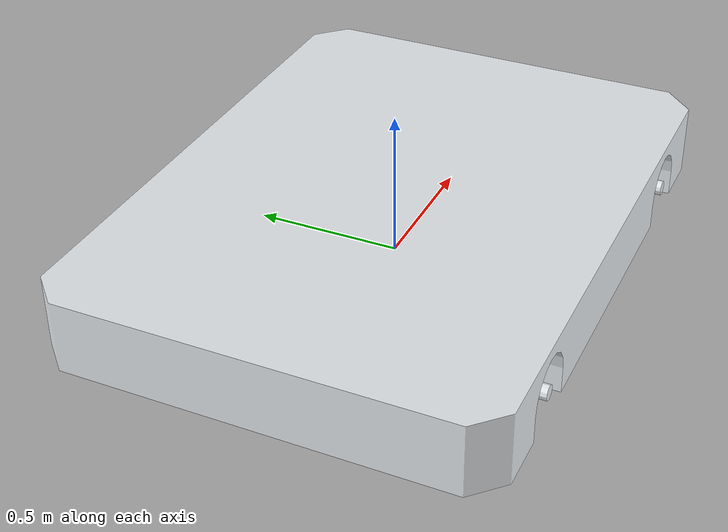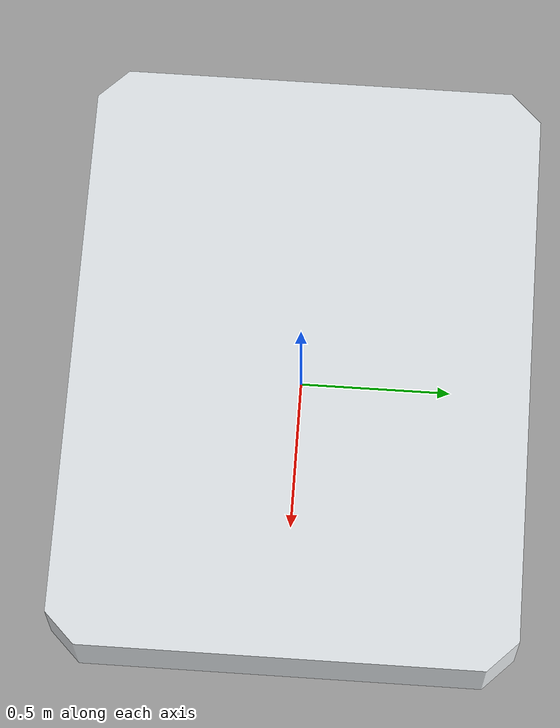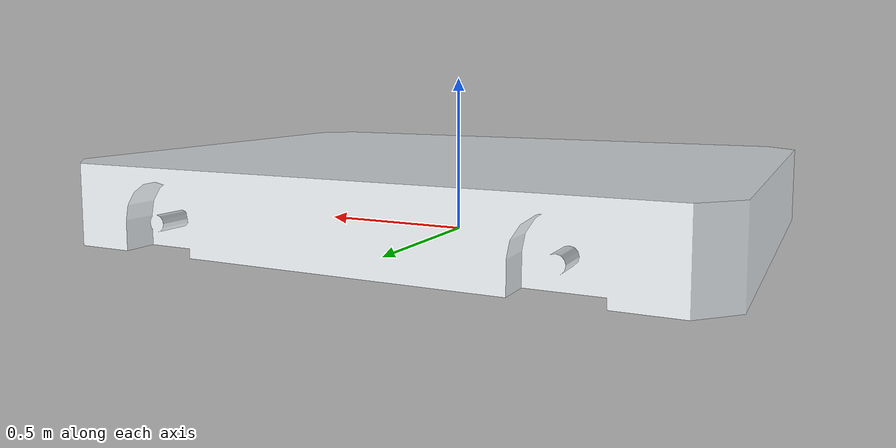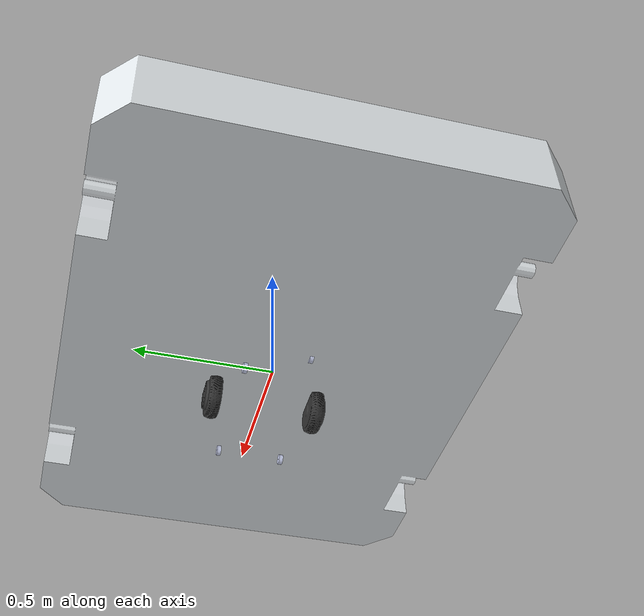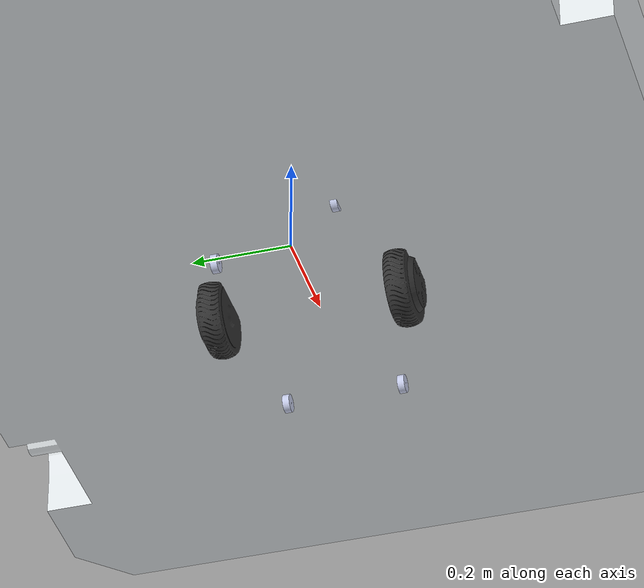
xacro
<?xml version="1.0"?>
<robot xmlns:xacro="http://www.ros.org/wiki/xacro" name="catkinws3">

    <xacro:include filename="$(find agv_description)/urdf/agv.gazebo.xml"/>

    <!-- base_footprint -->
    <link name="base_footprint"/>

    <!-- base_link -->
    <link name="base_link">
        <inertial>
            <origin xyz="0.138621950270377 2.91906096794303E-07 0.0179577331652797" rpy="0 0 0" />
            <mass value="3.97166544078829" />
            <inertia ixx="0.0158847293453143" ixy="-4.2298875873717E-07" ixz="-0.00052258251235648" iyy="0.0368921552122701" iyz="7.9566475845211E-08" izz="0.0515049917598545" />
        </inertial>
        <visual>
            <origin xyz="0 0 0" rpy="0 0 0" />
            <geometry>
                <mesh filename="package://agv_description/meshes/base_link.STL" />
            </geometry>
            <material name="">
                <color rgba="0.898039215686275 0.917647058823529 0.929411764705882 1" />
            </material>
        </visual>
        <collision>
            <origin xyz="0 0 0" rpy="0 0 0" />
            <geometry>
                <mesh filename="package://agv_description/meshes/base_link.STL" />
            </geometry>
        </collision>
    </link>

    <!-- base_footprint -> base_link joint -->
    <joint name="base_joint" type="fixed">
        <origin xyz="0 0 0" rpy="0 0 0"/>
        <parent link="base_footprint"/>
        <child link="base_link"/>
    </joint>

    <!-- Wheel and joint macro -->
    <xacro:include filename="$(find agv_description)/urdf/motor.urdf.xacro"/>

    <!-- Create left and right wheel/joint -->
    <xacro:motor name="R" inertial_xyz="2.55351295663786E-15 0.0299988941516324  -1.82076576038526E-14" joint_xyz="0.137499999999999 -0.219630000000005 -0.03499999999998" />
    <xacro:motor name="L" inertial_xyz="7.105427357601E-15 -0.0299988941516324 -9.99200722162641E-16" joint_xyz="0.137500000000089 0.219500000000043 -0.035000000000165" />

    <!-- Caster wheel and joint macro -->
    <xacro:include filename="$(find agv_description)/urdf/caster.urdf.xacro"/>

    <!-- Create 3 caster wheels -->
    <xacro:caster name="BL" inertial_xyz="-2.22044604925031E-16 -0.00699999999999888 0.08" joint_xyz="-0.0980431497482455 0.127370685518273 -0.11"/>
    <xacro:caster name="BR" inertial_xyz="-4.44089209850063E-16 -0.00699999999999884 0.08" joint_xyz="-0.0971131497482585 -0.109629314481721 -0.011"/>
    <xacro:caster name="FL" inertial_xyz="-3.33066907387547E-16 -0.0069999999999989 0.08" joint_xyz="0.373043149748246 0.123629314481709 -0.11"/>
    <xacro:caster name="FR" inertial_xyz="-1.18793863634892E-14 -0.244000000000001 0.08" joint_xyz="0.373043149748246 0.123629314481709 -0.11"/>

    <!-- Create lidars -->
    <xacro:include filename="$(find agv_description)/urdf/lidar.urdf.xacro"/>
    <xacro:lidar inertial_xyz="-0.0048886274400578 -6.93889390390723E-16 -0.0129807987682949" joint_xyz="0.237558564211312 0 0.1292" joint_rpy="0 0 0"/>

    <!-- Create imu -->
    <xacro:include filename="$(find agv_description)/urdf/imu.urdf.xacro"/>
    <xacro:imu inertial_xyz="-0.000209392145982146 0.00203777840465308 -0.00554991758455003" joint_xyz="0.350009083694646 -0.0954642238382053 0.0190199999886995" joint_rpy="0 0 0"/>

</robot>

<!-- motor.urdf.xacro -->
<robot xmlns:xacro="http://www.ros.org/wiki/xacro" name="motor">
    <xacro:macro name="motor" params="name inertial_xyz joint_xyz">
        <!-- Motor link -->
        <link name="${name}motor">
            <inertial>
                <origin xyz="${inertial_xyz}" rpy="0 0 0" />
                <mass value="0.981706452120763" />
                <xacro:if value="${name == 'R'}">
                    <inertia
                        ixx="0.00165290266939061"
                        ixy="2.94198682908582E-17"
                        ixz="2.72355132399867E-08"
                        iyy="0.00287871159387479"
                        iyz="-7.35154830854112E-17"
                        izz="0.00165293437442312" />
                </xacro:if>
                <xacro:if value="${name == 'L'}">
                    <inertia
                        ixx="0.00165290508243385"
                        ixy="3.08359520920725E-17"
                        ixz="1.9434755833785E-09"
                        iyy="0.00287869363117817"
                        iyz="-6.76177339940693E-17"
                        izz="0.00165291212237496" />
                </xacro:if>
            </inertial>
            <visual>
                <origin xyz="0 0 0" rpy="0 0 0" />
                <geometry>
                    <mesh filename="package://agv_description/meshes/${name}motor.STL" />
                </geometry>
                <material name="">
                    <color rgba="0.2 0.2 0.2 1" />
                </material>
            </visual>
            <collision>
                <origin xyz="0 0 0" rpy="0 0 0" />
                <geometry>
                    <mesh filename="package://agv_description/meshes/${name}motor.STL" />
                </geometry>
            </collision>
        </link>

        <!-- Motor Joint -->
        <joint name="${name}motor-jt" type="continuous">
            <origin xyz="${joint_xyz}" rpy="0 0 0" />
            <parent link="base_link" />
            <child link="${name}motor" />
            <axis xyz="0 1 0" />
        </joint>
    </xacro:macro>
</robot>

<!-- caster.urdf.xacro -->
<robot xmlns:xacro="http://www.ros.org/wiki/xacro" name="caster">
    <xacro:macro name="caster" params="name inertial_xyz joint_xyz">
        <!-- Caster link -->
        <link name="${name}caster">
            <inertial>
                <origin xyz="${inertial_xyz}" rpy="0 0 0" />
                <mass value="0.0148770120110745" />

                <xacro:if value="${name == 'BL'}">
                    <inertia
                        ixx="1.53078254838952E-06"
                        ixy="4.9774034321692E-20"
                        ixz="-1.49360626631541E-22"
                        iyy="2.57558270441727E-06"
                        iyz="-1.20886726192859E-19"
                        izz="1.53078254838952E-06" />
                </xacro:if>

                <xacro:if value="${name == 'BR'}">
                    <inertia
                        ixx="1.53078254838952E-06"
                        ixy="4.94263982761229E-20"
                        ixz="-4.8653538476786E-22"
                        iyy="2.57558270441727E-06"
                        iyz="-1.2073182197921E-19"
                        izz="1.53078254838952E-06" />
                </xacro:if>
                <xacro:if value="${name == 'FL'}">
                    <inertia
                        ixx="1.53078254838952E-06"
                        ixy="5.71019829653809E-20"
                        ixz="3.66389743395945E-22"
                        iyy="2.57558270441727E-06"
                        iyz="-6.49425903751959E-20"
                        izz="1.53078254838952E-06" />
                </xacro:if>

                <xacro:if value="${name == 'FR'}">
                    <inertia
                        ixx="1.53078254838952E-06"
                        ixy="5.46017249366924E-20"
                        ixz="7.00582450800531E-22"
                        iyy="2.57558270441727E-06"
                        iyz="-6.49455152329588E-20"
                        izz="1.53078254838952E-06" />
                </xacro:if>
            </inertial>
            <visual>
                <origin xyz="0 0 0" rpy="0 0 0" />
                <geometry>
                    <mesh filename="package://agv_description/meshes/${name}caster.STL" />
                </geometry>
                <material name="">
                    <color rgba="0.792156862745098 0.819607843137255 0.933333333333333 1" />
                </material>
            </visual>
            <collision>
                <origin xyz="0 0 0" rpy="0 0 0" />
                <geometry>
                    <mesh filename="package://agv_description/meshes/${name}caster.STL" />
                </geometry>
            </collision>
        </link>

        <!-- Caster Joint -->
        <joint name="${name}caster-jt" type="fixed">
            <origin xyz="${joint_xyz}" rpy="0 0 0" />
            <parent link="base_link" />
            <child link="${name}caster" />
            <axis xyz="0 0 0" />
        </joint>
    </xacro:macro>

</robot>

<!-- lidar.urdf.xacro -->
<robot xmlns:xacro="http://www.ros.org/wiki/xacro" name="lidar">
    <xacro:macro name="lidar" params="inertial_xyz joint_xyz joint_rpy">
        <!-- Lidar link -->
        <link name="lidar">
            <inertial>
                <origin xyz="${inertial_xyz}" rpy="0 0 0" />
                <mass value="0.0916760093130727" />
                <inertia
        ixx="3.50233287131223E-05"
        ixy="-1.85937449002437E-19"
        ixz="-2.78725851250563E-06"
        iyy="3.42747449012816E-05"
        iyz="1.5928067702973E-18"
        izz="6.0266034889394E-05" />
            </inertial>
            <visual>
                <origin xyz="0 0 0" rpy="0 0 0" />
                <geometry>
                    <mesh filename="package://agv_description/meshes/lidar.STL" />
                </geometry>
                <material name="">
                    <color rgba="0.792156862745098 0.819607843137255 0.933333333333333 1" />
                </material>
            </visual>
            <collision>
                <origin xyz="0 0 0" rpy="0 0 0" />
                <geometry>
                    <mesh filename="package://agv_description/meshes/lidar.STL" />
                </geometry>
            </collision>
        </link>

        <!-- Lidar Joint -->
        <joint name="lidar-jt" type="fixed">
            <origin xyz="${joint_xyz}" rpy="${joint_rpy}" />
            <parent link="base_link" />
            <child link="lidar" />
            <axis xyz="0 0 1" />
        </joint>
    </xacro:macro>
</robot>

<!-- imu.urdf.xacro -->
<robot xmlns:xacro="http://www.ros.org/wiki/xacro">
    <xacro:macro name="imu" params="inertial_xyz joint_xyz joint_rpy">
        <link name="imu">
            <inertial>
                <origin xyz="${inertial_xyz}" rpy="0 0 0" />
                <mass value="0.00138157489465955" />
                <inertia ixx="1.53453612532283E-08" ixy="2.83073496547656E-14" ixz="-1.1634390078899E-14" iyy="4.08683222018578E-08" iyz="2.69530312512749E-14" izz="4.40263508435086E-08" />
            </inertial>
            <visual>
                <origin xyz="0 0 0" rpy="0 0 0" />
                <geometry>
                    <mesh filename="package://agv_description/meshes/imu.STL" />
                </geometry>
                <material name="">
                    <color rgba="0.792156862745098 0.819607843137255 0.933333333333333 1" />
                </material>
            </visual>
            <collision>
                <origin xyz="0 0 0" rpy="0 0 0" />
                <geometry>
                    <mesh filename="package://agv_description/meshes/imu.STL" />
                </geometry>
            </collision>
        </link>
        <joint name="imu-jt" type="fixed">
            <origin xyz="${joint_xyz}" rpy="0 0 0" />
            <parent link="base_link" />
            <child link="imu" />
            <axis xyz="0 0 0" />
        </joint>
    </xacro:macro>
</robot>
